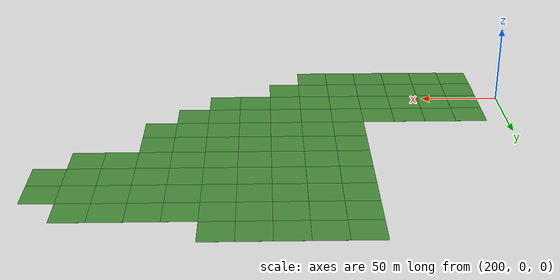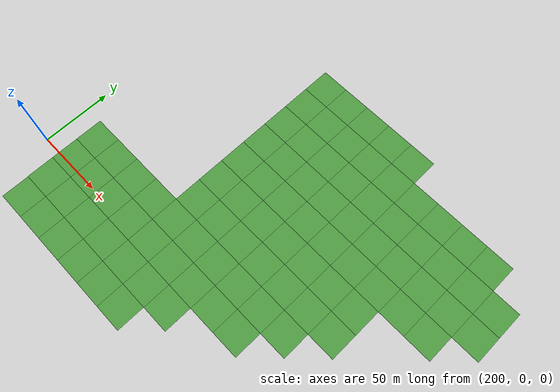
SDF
<sdf version="1.6">
 <world name="default">
  <model name="grass_plane_2">
   <static>1</static>
   <link name="link">
    <collision name="collision">
     <geometry><plane><normal>0 0 1</normal><size>500 500</size></plane></geometry>
     <surface><friction><ode><mu>0.5</mu><mu2>0.5</mu2></ode></friction></surface>
    </collision>
    <visual name="visual_0">
     <pose>-40 -40 0 0 -0 0</pose>
     <cast_shadows>0</cast_shadows>
     <geometry><plane><normal>0 0 1</normal><size>20 20</size></plane></geometry>
     <material>
      <script>
       <uri>model://grass_plane/materials/scripts</uri>
       <uri>model://grass_plane/materials/textures</uri>
       <name>vrc/grass</name>
      </script>
     </material>
    </visual>
    <visual name="visual_1">
     <pose>-20 -40 0 0 -0 0</pose>
     <cast_shadows>0</cast_shadows>
     <geometry><plane><normal>0 0 1</normal><size>20 20</size></plane></geometry>
     <material>
      <script>
       <uri>model://grass_plane/materials/scripts</uri>
       <uri>model://grass_plane/materials/textures</uri>
       <name>vrc/grass</name>
      </script>
     </material>
    </visual>
    <visual name="visual_2">
     <pose>0 -40 0 0 -0 0</pose>
     <cast_shadows>0</cast_shadows>
     <geometry><plane><normal>0 0 1</normal><size>20 20</size></plane></geometry>
     <material>
      <script>
       <uri>model://grass_plane/materials/scripts</uri>
       <uri>model://grass_plane/materials/textures</uri>
       <name>vrc/grass</name>
      </script>
     </material>
    </visual>
    <visual name="visual_3">
     <pose>20 -40 0 0 -0 0</pose>
     <cast_shadows>0</cast_shadows>
     <geometry><plane><normal>0 0 1</normal><size>20 20</size></plane></geometry>
     <material>
      <script>
       <uri>model://grass_plane/materials/scripts</uri>
       <uri>model://grass_plane/materials/textures</uri>
       <name>vrc/grass</name>
      </script>
     </material>
    </visual>
    <visual name="visual_4">
     <pose>40 -40 0 0 -0 0</pose>
     <cast_shadows>0</cast_shadows>
     <geometry><plane><normal>0 0 1</normal><size>20 20</size></plane></geometry>
     <material>
      <script>
       <uri>model://grass_plane/materials/scripts</uri>
       <uri>model://grass_plane/materials/textures</uri>
       <name>vrc/grass</name>
      </script>
     </material>
    </visual>
    <visual name="visual_5">
     <pose>60 -40 0 0 -0 0</pose>
     <cast_shadows>0</cast_shadows>
     <geometry><plane><normal>0 0 1</normal><size>20 20</size></plane></geometry>
     <material>
      <script>
       <uri>model://grass_plane/materials/scripts</uri>
       <uri>model://grass_plane/materials/textures</uri>
       <name>vrc/grass</name>
      </script>
     </material>
    </visual>
    <visual name="visual_6">
     <pose>-40 -20 0 0 -0 0</pose>
     <cast_shadows>0</cast_shadows>
     <geometry><plane><normal>0 0 1</normal><size>20 20</size></plane></geometry>
     <material>
      <script>
       <uri>model://grass_plane/materials/scripts</uri>
       <uri>model://grass_plane/materials/textures</uri>
       <name>vrc/grass</name>
      </script>
     </material>
    </visual>
    <visual name="visual_7">
     <pose>-20 -20 0 0 -0 0</pose>
     <cast_shadows>0</cast_shadows>
     <geometry><plane><normal>0 0 1</normal><size>20 20</size></plane></geometry>
     <material>
      <script>
       <uri>model://grass_plane/materials/scripts</uri>
       <uri>model://grass_plane/materials/textures</uri>
       <name>vrc/grass</name>
      </script>
     </material>
    </visual>
    <visual name="visual_8">
     <pose>0 -20 0 0 -0 0</pose>
     <cast_shadows>0</cast_shadows>
     <geometry><plane><normal>0 0 1</normal><size>20 20</size></plane></geometry>
     <material>
      <script>
       <uri>model://grass_plane/materials/scripts</uri>
       <uri>model://grass_plane/materials/textures</uri>
       <name>vrc/grass</name>
      </script>
     </material>
    </visual>
    <visual name="visual_9">
     <pose>20 -20 0 0 -0 0</pose>
     <cast_shadows>0</cast_shadows>
     <geometry><plane><normal>0 0 1</normal><size>20 20</size></plane></geometry>
     <material>
      <script>
       <uri>model://grass_plane/materials/scripts</uri>
       <uri>model://grass_plane/materials/textures</uri>
       <name>vrc/grass</name>
      </script>
     </material>
    </visual>
    <visual name="visual_10">
     <pose>40 -20 0 0 -0 0</pose>
     <cast_shadows>0</cast_shadows>
     <geometry><plane><normal>0 0 1</normal><size>20 20</size></plane></geometry>
     <material>
      <script>
       <uri>model://grass_plane/materials/scripts</uri>
       <uri>model://grass_plane/materials/textures</uri>
       <name>vrc/grass</name>
      </script>
     </material>
    </visual>
    <visual name="visual_11">
     <pose>60 -20 0 0 -0 0</pose>
     <cast_shadows>0</cast_shadows>
     <geometry><plane><normal>0 0 1</normal><size>20 20</size></plane></geometry>
     <material>
      <script>
       <uri>model://grass_plane/materials/scripts</uri>
       <uri>model://grass_plane/materials/textures</uri>
       <name>vrc/grass</name>
      </script>
     </material>
    </visual>
    <visual name="visual_12">
     <pose>80 -20 0 0 -0 0</pose>
     <cast_shadows>0</cast_shadows>
     <geometry><plane><normal>0 0 1</normal><size>20 20</size></plane></geometry>
     <material>
      <script>
       <uri>model://grass_plane/materials/scripts</uri>
       <uri>model://grass_plane/materials/textures</uri>
       <name>vrc/grass</name>
      </script>
     </material>
    </visual>
    <visual name="visual_13">
     <pose>-40 0 0 0 -0 0</pose>
     <cast_shadows>0</cast_shadows>
     <geometry><plane><normal>0 0 1</normal><size>20 20</size></plane></geometry>
     <material>
      <script>
       <uri>model://grass_plane/materials/scripts</uri>
       <uri>model://grass_plane/materials/textures</uri>
       <name>vrc/grass</name>
      </script>
     </material>
    </visual>
    <visual name="visual_14">
     <pose>-20 0 0 0 -0 0</pose>
     <cast_shadows>0</cast_shadows>
     <geometry><plane><normal>0 0 1</normal><size>20 20</size></plane></geometry>
     <material>
      <script>
       <uri>model://grass_plane/materials/scripts</uri>
       <uri>model://grass_plane/materials/textures</uri>
       <name>vrc/grass</name>
      </script>
     </material>
    </visual>
    <visual name="visual_15">
     <cast_shadows>0</cast_shadows>
     <geometry><plane><normal>0 0 1</normal><size>20 20</size></plane></geometry>
     <material>
      <script>
       <uri>model://grass_plane/materials/scripts</uri>
       <uri>model://grass_plane/materials/textures</uri>
       <name>vrc/grass</name>
      </script>
     </material>
    </visual>
    <visual name="visual_16">
     <pose>20 0 0 0 -0 0</pose>
     <cast_shadows>0</cast_shadows>
     <geometry><plane><normal>0 0 1</normal><size>20 20</size></plane></geometry>
     <material>
      <script>
       <uri>model://grass_plane/materials/scripts</uri>
       <uri>model://grass_plane/materials/textures</uri>
       <name>vrc/grass</name>
      </script>
     </material>
    </visual>
    <visual name="visual_17">
     <pose>40 0 0 0 -0 0</pose>
     <cast_shadows>0</cast_shadows>
     <geometry><plane><normal>0 0 1</normal><size>20 20</size></plane></geometry>
     <material>
      <script>
       <uri>model://grass_plane/materials/scripts</uri>
       <uri>model://grass_plane/materials/textures</uri>
       <name>vrc/grass</name>
      </script>
     </material>
    </visual>
    <visual name="visual_18">
     <pose>60 0 0 0 -0 0</pose>
     <cast_shadows>0</cast_shadows>
     <geometry><plane><normal>0 0 1</normal><size>20 20</size></plane></geometry>
     <material>
      <script>
       <uri>model://grass_plane/materials/scripts</uri>
       <uri>model://grass_plane/materials/textures</uri>
       <name>vrc/grass</name>
      </script>
     </material>
    </visual>
    <visual name="visual_19">
     <pose>80 0 0 0 -0 0</pose>
     <cast_shadows>0</cast_shadows>
     <geometry><plane><normal>0 0 1</normal><size>20 20</size></plane></geometry>
     <material>
      <script>
       <uri>model://grass_plane/materials/scripts</uri>
       <uri>model://grass_plane/materials/textures</uri>
       <name>vrc/grass</name>
      </script>
     </material>
    </visual>
    <visual name="visual_20">
     <pose>100 0 0 0 -0 0</pose>
     <cast_shadows>0</cast_shadows>
     <geometry><plane><normal>0 0 1</normal><size>20 20</size></plane></geometry>
     <material>
      <script>
       <uri>model://grass_plane/materials/scripts</uri>
       <uri>model://grass_plane/materials/textures</uri>
       <name>vrc/grass</name>
      </script>
     </material>
    </visual>
    <visual name="visual_21">
     <pose>120 0 0 0 -0 0</pose>
     <cast_shadows>0</cast_shadows>
     <geometry><plane><normal>0 0 1</normal><size>20 20</size></plane></geometry>
     <material>
      <script>
       <uri>model://grass_plane/materials/scripts</uri>
       <uri>model://grass_plane/materials/textures</uri>
       <name>vrc/grass</name>
      </script>
     </material>
    </visual>
    <visual name="visual_22">
     <pose>-40 20 0 0 -0 0</pose>
     <cast_shadows>0</cast_shadows>
     <geometry><plane><normal>0 0 1</normal><size>20 20</size></plane></geometry>
     <material>
      <script>
       <uri>model://grass_plane/materials/scripts</uri>
       <uri>model://grass_plane/materials/textures</uri>
       <name>vrc/grass</name>
      </script>
     </material>
    </visual>
    <visual name="visual_23">
     <pose>-20 20 0 0 -0 0</pose>
     <cast_shadows>0</cast_shadows>
     <geometry><plane><normal>0 0 1</normal><size>20 20</size></plane></geometry>
     <material>
      <script>
       <uri>model://grass_plane/materials/scripts</uri>
       <uri>model://grass_plane/materials/textures</uri>
       <name>vrc/grass</name>
      </script>
     </material>
    </visual>
    <visual name="visual_24">
     <pose>0 20 0 0 -0 0</pose>
     <cast_shadows>0</cast_shadows>
     <geometry><plane><normal>0 0 1</normal><size>20 20</size></plane></geometry>
     <material>
      <script>
       <uri>model://grass_plane/materials/scripts</uri>
       <uri>model://grass_plane/materials/textures</uri>
       <name>vrc/grass</name>
      </script>
     </material>
    </visual>
    <visual name="visual_25">
     <pose>20 20 0 0 -0 0</pose>
     <cast_shadows>0</cast_shadows>
     <geometry><plane><normal>0 0 1</normal><size>20 20</size></plane></geometry>
     <material>
      <script>
       <uri>model://grass_plane/materials/scripts</uri>
       <uri>model://grass_plane/materials/textures</uri>
       <name>vrc/grass</name>
      </script>
     </material>
    </visual>
    <visual name="visual_26">
     <pose>40 20 0 0 -0 0</pose>
     <cast_shadows>0</cast_shadows>
     <geometry><plane><normal>0 0 1</normal><size>20 20</size></plane></geometry>
     <material>
      <script>
       <uri>model://grass_plane/materials/scripts</uri>
       <uri>model://grass_plane/materials/textures</uri>
       <name>vrc/grass</name>
      </script>
     </material>
    </visual>
    <visual name="visual_27">
     <pose>60 20 0 0 -0 0</pose>
     <cast_shadows>0</cast_shadows>
     <geometry><plane><normal>0 0 1</normal><size>20 20</size></plane></geometry>
     <material>
      <script>
       <uri>model://grass_plane/materials/scripts</uri>
       <uri>model://grass_plane/materials/textures</uri>
       <name>vrc/grass</name>
      </script>
     </material>
    </visual>
    <visual name="visual_28">
     <pose>80 20 0 0 -0 0</pose>
     <cast_shadows>0</cast_shadows>
     <geometry><plane><normal>0 0 1</normal><size>20 20</size></plane></geometry>
     <material>
      <script>
       <uri>model://grass_plane/materials/scripts</uri>
       <uri>model://grass_plane/materials/textures</uri>
       <name>vrc/grass</name>
      </script>
     </material>
    </visual>
    <visual name="visual_29">
     <pose>100 20 0 0 -0 0</pose>
     <cast_shadows>0</cast_shadows>
     <geometry><plane><normal>0 0 1</normal><size>20 20</size></plane></geometry>
     <material>
      <script>
       <uri>model://grass_plane/materials/scripts</uri>
       <uri>model://grass_plane/materials/textures</uri>
       <name>vrc/grass</name>
      </script>
     </material>
    </visual>
    <visual name="visual_30">
     <pose>120 20 0 0 -0 0</pose>
     <cast_shadows>0</cast_shadows>
     <geometry><plane><normal>0 0 1</normal><size>20 20</size></plane></geometry>
     <material>
      <script>
       <uri>model://grass_plane/materials/scripts</uri>
       <uri>model://grass_plane/materials/textures</uri>
       <name>vrc/grass</name>
      </script>
     </material>
    </visual>
    <visual name="visual_31">
     <pose>140 20 0 0 -0 0</pose>
     <cast_shadows>0</cast_shadows>
     <geometry><plane><normal>0 0 1</normal><size>20 20</size></plane></geometry>
     <material>
      <script>
       <uri>model://grass_plane/materials/scripts</uri>
       <uri>model://grass_plane/materials/textures</uri>
       <name>vrc/grass</name>
      </script>
     </material>
    </visual>
    <visual name="visual_32">
     <pose>40 40 0 0 -0 0</pose>
     <cast_shadows>0</cast_shadows>
     <geometry><plane><normal>0 0 1</normal><size>20 20</size></plane></geometry>
     <material>
      <script>
       <uri>model://grass_plane/materials/scripts</uri>
       <uri>model://grass_plane/materials/textures</uri>
       <name>vrc/grass</name>
      </script>
     </material>
    </visual>
    <visual name="visual_33">
     <pose>60 40 0 0 -0 0</pose>
     <cast_shadows>0</cast_shadows>
     <geometry><plane><normal>0 0 1</normal><size>20 20</size></plane></geometry>
     <material>
      <script>
       <uri>model://grass_plane/materials/scripts</uri>
       <uri>model://grass_plane/materials/textures</uri>
       <name>vrc/grass</name>
      </script>
     </material>
    </visual>
    <visual name="visual_34">
     <pose>80 40 0 0 -0 0</pose>
     <cast_shadows>0</cast_shadows>
     <geometry><plane><normal>0 0 1</normal><size>20 20</size></plane></geometry>
     <material>
      <script>
       <uri>model://grass_plane/materials/scripts</uri>
       <uri>model://grass_plane/materials/textures</uri>
       <name>vrc/grass</name>
      </script>
     </material>
    </visual>
    <visual name="visual_35">
     <pose>100 40 0 0 -0 0</pose>
     <cast_shadows>0</cast_shadows>
     <geometry><plane><normal>0 0 1</normal><size>20 20</size></plane></geometry>
     <material>
      <script>
       <uri>model://grass_plane/materials/scripts</uri>
       <uri>model://grass_plane/materials/textures</uri>
       <name>vrc/grass</name>
      </script>
     </material>
    </visual>
    <visual name="visual_36">
     <pose>120 40 0 0 -0 0</pose>
     <cast_shadows>0</cast_shadows>
     <geometry><plane><normal>0 0 1</normal><size>20 20</size></plane></geometry>
     <material>
      <script>
       <uri>model://grass_plane/materials/scripts</uri>
       <uri>model://grass_plane/materials/textures</uri>
       <name>vrc/grass</name>
      </script>
     </material>
    </visual>
    <visual name="visual_37">
     <pose>140 40 0 0 -0 0</pose>
     <cast_shadows>0</cast_shadows>
     <geometry><plane><normal>0 0 1</normal><size>20 20</size></plane></geometry>
     <material>
      <script>
       <uri>model://grass_plane/materials/scripts</uri>
       <uri>model://grass_plane/materials/textures</uri>
       <name>vrc/grass</name>
      </script>
     </material>
    </visual>
    <visual name="visual_38">
     <pose>160 40 0 0 -0 0</pose>
     <cast_shadows>0</cast_shadows>
     <geometry><plane><normal>0 0 1</normal><size>20 20</size></plane></geometry>
     <material>
      <script>
       <uri>model://grass_plane/materials/scripts</uri>
       <uri>model://grass_plane/materials/textures</uri>
       <name>vrc/grass</name>
      </script>
     </material>
    </visual>
    <visual name="visual_39">
     <pose>40 60 0 0 -0 0</pose>
     <cast_shadows>0</cast_shadows>
     <geometry><plane><normal>0 0 1</normal><size>20 20</size></plane></geometry>
     <material>
      <script>
       <uri>model://grass_plane/materials/scripts</uri>
       <uri>model://grass_plane/materials/textures</uri>
       <name>vrc/grass</name>
      </script>
     </material>
    </visual>
    <visual name="visual_40">
     <pose>60 60 0 0 -0 0</pose>
     <cast_shadows>0</cast_shadows>
     <geometry><plane><normal>0 0 1</normal><size>20 20</size></plane></geometry>
     <material>
      <script>
       <uri>model://grass_plane/materials/scripts</uri>
       <uri>model://grass_plane/materials/textures</uri>
       <name>vrc/grass</name>
      </script>
     </material>
    </visual>
    <visual name="visual_41">
     <pose>80 60 0 0 -0 0</pose>
     <cast_shadows>0</cast_shadows>
     <geometry><plane><normal>0 0 1</normal><size>20 20</size></plane></geometry>
     <material>
      <script>
       <uri>model://grass_plane/materials/scripts</uri>
       <uri>model://grass_plane/materials/textures</uri>
       <name>vrc/grass</name>
      </script>
     </material>
    </visual>
    <visual name="visual_42">
     <pose>100 60 0 0 -0 0</pose>
     <cast_shadows>0</cast_shadows>
     <geometry><plane><normal>0 0 1</normal><size>20 20</size></plane></geometry>
     <material>
      <script>
       <uri>model://grass_plane/materials/scripts</uri>
       <uri>model://grass_plane/materials/textures</uri>
       <name>vrc/grass</name>
      </script>
     </material>
    </visual>
    <visual name="visual_43">
     <pose>120 60 0 0 -0 0</pose>
     <cast_shadows>0</cast_shadows>
     <geometry><plane><normal>0 0 1</normal><size>20 20</size></plane></geometry>
     <material>
      <script>
       <uri>model://grass_plane/materials/scripts</uri>
       <uri>model://grass_plane/materials/textures</uri>
       <name>vrc/grass</name>
      </script>
     </material>
    </visual>
    <visual name="visual_44">
     <pose>140 60 0 0 -0 0</pose>
     <cast_shadows>0</cast_shadows>
     <geometry><plane><normal>0 0 1</normal><size>20 20</size></plane></geometry>
     <material>
      <script>
       <uri>model://grass_plane/materials/scripts</uri>
       <uri>model://grass_plane/materials/textures</uri>
       <name>vrc/grass</name>
      </script>
     </material>
    </visual>
    <visual name="visual_45">
     <pose>160 60 0 0 -0 0</pose>
     <cast_shadows>0</cast_shadows>
     <geometry><plane><normal>0 0 1</normal><size>20 20</size></plane></geometry>
     <material>
      <script>
       <uri>model://grass_plane/materials/scripts</uri>
       <uri>model://grass_plane/materials/textures</uri>
       <name>vrc/grass</name>
      </script>
     </material>
    </visual>
    <visual name="visual_46">
     <pose>40 80 0 0 -0 0</pose>
     <cast_shadows>0</cast_shadows>
     <geometry><plane><normal>0 0 1</normal><size>20 20</size></plane></geometry>
     <material>
      <script>
       <uri>model://grass_plane/materials/scripts</uri>
       <uri>model://grass_plane/materials/textures</uri>
       <name>vrc/grass</name>
      </script>
     </material>
    </visual>
    <visual name="visual_47">
     <pose>60 80 0 0 -0 0</pose>
     <cast_shadows>0</cast_shadows>
     <geometry><plane><normal>0 0 1</normal><size>20 20</size></plane></geometry>
     <material>
      <script>
       <uri>model://grass_plane/materials/scripts</uri>
       <uri>model://grass_plane/materials/textures</uri>
       <name>vrc/grass</name>
      </script>
     </material>
    </visual>
    <visual name="visual_48">
     <pose>80 80 0 0 -0 0</pose>
     <cast_shadows>0</cast_shadows>
     <geometry><plane><normal>0 0 1</normal><size>20 20</size></plane></geometry>
     <material>
      <script>
       <uri>model://grass_plane/materials/scripts</uri>
       <uri>model://grass_plane/materials/textures</uri>
       <name>vrc/grass</name>
      </script>
     </material>
    </visual>
    <visual name="visual_49">
     <pose>100 80 0 0 -0 0</pose>
     <cast_shadows>0</cast_shadows>
     <geometry><plane><normal>0 0 1</normal><size>20 20</size></plane></geometry>
     <material>
      <script>
       <uri>model://grass_plane/materials/scripts</uri>
       <uri>model://grass_plane/materials/textures</uri>
       <name>vrc/grass</name>
      </script>
     </material>
    </visual>
    <visual name="visual_50">
     <pose>120 80 0 0 -0 0</pose>
     <cast_shadows>0</cast_shadows>
     <geometry><plane><normal>0 0 1</normal><size>20 20</size></plane></geometry>
     <material>
      <script>
       <uri>model://grass_plane/materials/scripts</uri>
       <uri>model://grass_plane/materials/textures</uri>
       <name>vrc/grass</name>
      </script>
     </material>
    </visual>
    <visual name="visual_51">
     <pose>140 80 0 0 -0 0</pose>
     <cast_shadows>0</cast_shadows>
     <geometry><plane><normal>0 0 1</normal><size>20 20</size></plane></geometry>
     <material>
      <script>
       <uri>model://grass_plane/materials/scripts</uri>
       <uri>model://grass_plane/materials/textures</uri>
       <name>vrc/grass</name>
      </script>
     </material>
    </visual>
    <visual name="visual_52">
     <pose>160 80 0 0 -0 0</pose>
     <cast_shadows>0</cast_shadows>
     <geometry><plane><normal>0 0 1</normal><size>20 20</size></plane></geometry>
     <material>
      <script>
       <uri>model://grass_plane/materials/scripts</uri>
       <uri>model://grass_plane/materials/textures</uri>
       <name>vrc/grass</name>
      </script>
     </material>
    </visual>
    <visual name="visual_53">
     <pose>180 80 0 0 -0 0</pose>
     <cast_shadows>0</cast_shadows>
     <geometry><plane><normal>0 0 1</normal><size>20 20</size></plane></geometry>
     <material>
      <script>
       <uri>model://grass_plane/materials/scripts</uri>
       <uri>model://grass_plane/materials/textures</uri>
       <name>vrc/grass</name>
      </script>
     </material>
    </visual>
    <visual name="visual_54">
     <pose>200 80 0 0 -0 0</pose>
     <cast_shadows>0</cast_shadows>
     <geometry><plane><normal>0 0 1</normal><size>20 20</size></plane></geometry>
     <material>
      <script>
       <uri>model://grass_plane/materials/scripts</uri>
       <uri>model://grass_plane/materials/textures</uri>
       <name>vrc/grass</name>
      </script>
     </material>
    </visual>
    <visual name="visual_55">
     <pose>40 100 0 0 -0 0</pose>
     <cast_shadows>0</cast_shadows>
     <geometry><plane><normal>0 0 1</normal><size>20 20</size></plane></geometry>
     <material>
      <script>
       <uri>model://grass_plane/materials/scripts</uri>
       <uri>model://grass_plane/materials/textures</uri>
       <name>vrc/grass</name>
      </script>
     </material>
    </visual>
    <visual name="visual_56">
     <pose>60 100 0 0 -0 0</pose>
     <cast_shadows>0</cast_shadows>
     <geometry><plane><normal>0 0 1</normal><size>20 20</size></plane></geometry>
     <material>
      <script>
       <uri>model://grass_plane/materials/scripts</uri>
       <uri>model://grass_plane/materials/textures</uri>
       <name>vrc/grass</name>
      </script>
     </material>
    </visual>
    <visual name="visual_57">
     <pose>80 100 0 0 -0 0</pose>
     <cast_shadows>0</cast_shadows>
     <geometry><plane><normal>0 0 1</normal><size>20 20</size></plane></geometry>
     <material>
      <script>
       <uri>model://grass_plane/materials/scripts</uri>
       <uri>model://grass_plane/materials/textures</uri>
       <name>vrc/grass</name>
      </script>
     </material>
    </visual>
    <visual name="visual_58">
     <pose>100 100 0 0 -0 0</pose>
     <cast_shadows>0</cast_shadows>
     <geometry><plane><normal>0 0 1</normal><size>20 20</size></plane></geometry>
     <material>
      <script>
       <uri>model://grass_plane/materials/scripts</uri>
       <uri>model://grass_plane/materials/textures</uri>
       <name>vrc/grass</name>
      </script>
     </material>
    </visual>
    <visual name="visual_59">
     <pose>120 100 0 0 -0 0</pose>
     <cast_shadows>0</cast_shadows>
     <geometry><plane><normal>0 0 1</normal><size>20 20</size></plane></geometry>
     <material>
      <script>
       <uri>model://grass_plane/materials/scripts</uri>
       <uri>model://grass_plane/materials/textures</uri>
       <name>vrc/grass</name>
      </script>
     </material>
    </visual>
    <visual name="visual_60">
     <pose>140 100 0 0 -0 0</pose>
     <cast_shadows>0</cast_shadows>
     <geometry><plane><normal>0 0 1</normal><size>20 20</size></plane></geometry>
     <material>
      <script>
       <uri>model://grass_plane/materials/scripts</uri>
       <uri>model://grass_plane/materials/textures</uri>
       <name>vrc/grass</name>
      </script>
     </material>
    </visual>
    <visual name="visual_61">
     <pose>160 100 0 0 -0 0</pose>
     <cast_shadows>0</cast_shadows>
     <geometry><plane><normal>0 0 1</normal><size>20 20</size></plane></geometry>
     <material>
      <script>
       <uri>model://grass_plane/materials/scripts</uri>
       <uri>model://grass_plane/materials/textures</uri>
       <name>vrc/grass</name>
      </script>
     </material>
    </visual>
    <visual name="visual_62">
     <pose>180 100 0 0 -0 0</pose>
     <cast_shadows>0</cast_shadows>
     <geometry><plane><normal>0 0 1</normal><size>20 20</size></plane></geometry>
     <material>
      <script>
       <uri>model://grass_plane/materials/scripts</uri>
       <uri>model://grass_plane/materials/textures</uri>
       <name>vrc/grass</name>
      </script>
     </material>
    </visual>
    <visual name="visual_63">
     <pose>200 100 0 0 -0 0</pose>
     <cast_shadows>0</cast_shadows>
     <geometry><plane><normal>0 0 1</normal><size>20 20</size></plane></geometry>
     <material>
      <script>
       <uri>model://grass_plane/materials/scripts</uri>
       <uri>model://grass_plane/materials/textures</uri>
       <name>vrc/grass</name>
      </script>
     </material>
    </visual>
    <visual name="visual_63a">
     <pose>220 100 0 0 -0 0</pose>
     <cast_shadows>0</cast_shadows>
     <geometry><plane><normal>0 0 1</normal><size>20 20</size></plane></geometry>
     <material>
      <script>
       <uri>model://grass_plane/materials/scripts</uri>
       <uri>model://grass_plane/materials/textures</uri>
       <name>vrc/grass</name>
      </script>
     </material>
    </visual>
    <visual name="visual_64">
     <pose>40 120 0 0 -0 0</pose>
     <cast_shadows>0</cast_shadows>
     <geometry><plane><normal>0 0 1</normal><size>20 20</size></plane></geometry>
     <material>
      <script>
       <uri>model://grass_plane/materials/scripts</uri>
       <uri>model://grass_plane/materials/textures</uri>
       <name>vrc/grass</name>
      </script>
     </material>
    </visual>
    <visual name="visual_65">
     <pose>60 120 0 0 -0 0</pose>
     <cast_shadows>0</cast_shadows>
     <geometry><plane><normal>0 0 1</normal><size>20 20</size></plane></geometry>
     <material>
      <script>
       <uri>model://grass_plane/materials/scripts</uri>
       <uri>model://grass_plane/materials/textures</uri>
       <name>vrc/grass</name>
      </script>
     </material>
    </visual>
    <visual name="visual_66">
     <pose>80 120 0 0 -0 0</pose>
     <cast_shadows>0</cast_shadows>
     <geometry><plane><normal>0 0 1</normal><size>20 20</size></plane></geometry>
     <material>
      <script>
       <uri>model://grass_plane/materials/scripts</uri>
       <uri>model://grass_plane/materials/textures</uri>
       <name>vrc/grass</name>
      </script>
     </material>
    </visual>
    <visual name="visual_67">
     <pose>100 120 0 0 -0 0</pose>
     <cast_shadows>0</cast_shadows>
     <geometry><plane><normal>0 0 1</normal><size>20 20</size></plane></geometry>
     <material>
      <script>
       <uri>model://grass_plane/materials/scripts</uri>
       <uri>model://grass_plane/materials/textures</uri>
       <name>vrc/grass</name>
      </script>
     </material>
    </visual>
    <visual name="visual_68">
     <pose>120 120 0 0 -0 0</pose>
     <cast_shadows>0</cast_shadows>
     <geometry><plane><normal>0 0 1</normal><size>20 20</size></plane></geometry>
     <material>
      <script>
       <uri>model://grass_plane/materials/scripts</uri>
       <uri>model://grass_plane/materials/textures</uri>
       <name>vrc/grass</name>
      </script>
     </material>
    </visual>
    <visual name="visual_69">
     <pose>140 120 0 0 -0 0</pose>
     <cast_shadows>0</cast_shadows>
     <geometry><plane><normal>0 0 1</normal><size>20 20</size></plane></geometry>
     <material>
      <script>
       <uri>model://grass_plane/materials/scripts</uri>
       <uri>model://grass_plane/materials/textures</uri>
       <name>vrc/grass</name>
      </script>
     </material>
    </visual>
    <visual name="visual_70">
     <pose>160 120 0 0 -0 0</pose>
     <cast_shadows>0</cast_shadows>
     <geometry><plane><normal>0 0 1</normal><size>20 20</size></plane></geometry>
     <material>
      <script>
       <uri>model://grass_plane/materials/scripts</uri>
       <uri>model://grass_plane/materials/textures</uri>
       <name>vrc/grass</name>
      </script>
     </material>
    </visual>
    <visual name="visual_71">
     <pose>180 120 0 0 -0 0</pose>
     <cast_shadows>0</cast_shadows>
     <geometry><plane><normal>0 0 1</normal><size>20 20</size></plane></geometry>
     <material>
      <script>
       <uri>model://grass_plane/materials/scripts</uri>
       <uri>model://grass_plane/materials/textures</uri>
       <name>vrc/grass</name>
      </script>
     </material>
    </visual>
    <visual name="visual_72">
     <pose>200 120 0 0 -0 0</pose>
     <cast_shadows>0</cast_shadows>
     <geometry><plane><normal>0 0 1</normal><size>20 20</size></plane></geometry>
     <material>
      <script>
       <uri>model://grass_plane/materials/scripts</uri>
       <uri>model://grass_plane/materials/textures</uri>
       <name>vrc/grass</name>
      </script>
     </material>
    </visual>
    <visual name="visual_72a">
     <pose>220 120 0 0 -0 0</pose>
     <cast_shadows>0</cast_shadows>
     <geometry><plane><normal>0 0 1</normal><size>20 20</size></plane></geometry>
     <material>
      <script>
       <uri>model://grass_plane/materials/scripts</uri>
       <uri>model://grass_plane/materials/textures</uri>
       <name>vrc/grass</name>
      </script>
     </material>
    </visual>
    <visual name="visual_73">
     <pose>40 140 0 0 -0 0</pose>
     <cast_shadows>0</cast_shadows>
     <geometry><plane><normal>0 0 1</normal><size>20 20</size></plane></geometry>
     <material>
      <script>
       <uri>model://grass_plane/materials/scripts</uri>
       <uri>model://grass_plane/materials/textures</uri>
       <name>vrc/grass</name>
      </script>
     </material>
    </visual>
    <visual name="visual_74">
     <pose>60 140 0 0 -0 0</pose>
     <cast_shadows>0</cast_shadows>
     <geometry><plane><normal>0 0 1</normal><size>20 20</size></plane></geometry>
     <material>
      <script>
       <uri>model://grass_plane/materials/scripts</uri>
       <uri>model://grass_plane/materials/textures</uri>
       <name>vrc/grass</name>
      </script>
     </material>
    </visual>
    <visual name="visual_75">
     <pose>80 140 0 0 -0 0</pose>
     <cast_shadows>0</cast_shadows>
     <geometry><plane><normal>0 0 1</normal><size>20 20</size></plane></geometry>
     <material>
      <script>
       <uri>model://grass_plane/materials/scripts</uri>
       <uri>model://grass_plane/materials/textures</uri>
       <name>vrc/grass</name>
      </script>
     </material>
    </visual>
    <visual name="visual_76">
     <pose>100 140 0 0 -0 0</pose>
     <cast_shadows>0</cast_shadows>
     <geometry><plane><normal>0 0 1</normal><size>20 20</size></plane></geometry>
     <material>
      <script>
       <uri>model://grass_plane/materials/scripts</uri>
       <uri>model://grass_plane/materials/textures</uri>
       <name>vrc/grass</name>
      </script>
     </material>
    </visual>
    <visual name="visual_77">
     <pose>120 140 0 0 -0 0</pose>
     <cast_shadows>0</cast_shadows>
     <geometry><plane><normal>0 0 1</normal><size>20 20</size></plane></geometry>
     <material>
      <script>
       <uri>model://grass_plane/materials/scripts</uri>
       <uri>model://grass_plane/materials/textures</uri>
       <name>vrc/grass</name>
      </script>
     </material>
    </visual>
    <visual name="visual_78">
     <pose>140 140 0 0 -0 0</pose>
     <cast_shadows>0</cast_shadows>
     <geometry><plane><normal>0 0 1</normal><size>20 20</size></plane></geometry>
     <material>
      <script>
       <uri>model://grass_plane/materials/scripts</uri>
       <uri>model://grass_plane/materials/textures</uri>
       <name>vrc/grass</name>
      </script>
     </material>
    </visual>
    <visual name="visual_79">
     <pose>160 140 0 0 -0 0</pose>
     <cast_shadows>0</cast_shadows>
     <geometry><plane><normal>0 0 1</normal><size>20 20</size></plane></geometry>
     <material>
      <script>
       <uri>model://grass_plane/materials/scripts</uri>
       <uri>model://grass_plane/materials/textures</uri>
       <name>vrc/grass</name>
      </script>
     </material>
    </visual>
    <visual name="visual_80">
     <pose>180 140 0 0 -0 0</pose>
     <cast_shadows>0</cast_shadows>
     <geometry><plane><normal>0 0 1</normal><size>20 20</size></plane></geometry>
     <material>
      <script>
       <uri>model://grass_plane/materials/scripts</uri>
       <uri>model://grass_plane/materials/textures</uri>
       <name>vrc/grass</name>
      </script>
     </material>
    </visual>
    <visual name="visual_81">
     <pose>200 140 0 0 -0 0</pose>
     <cast_shadows>0</cast_shadows>
     <geometry><plane><normal>0 0 1</normal><size>20 20</size></plane></geometry>
     <material>
      <script>
       <uri>model://grass_plane/materials/scripts</uri>
       <uri>model://grass_plane/materials/textures</uri>
       <name>vrc/grass</name>
      </script>
     </material>
    </visual>
    <visual name="visual_82">
     <pose>40 160 0 0 -0 0</pose>
     <cast_shadows>0</cast_shadows>
     <geometry><plane><normal>0 0 1</normal><size>20 20</size></plane></geometry>
     <material>
      <script>
       <uri>model://grass_plane/materials/scripts</uri>
       <uri>model://grass_plane/materials/textures</uri>
       <name>vrc/grass</name>
      </script>
     </material>
    </visual>
    <visual name="visual_83">
     <pose>60 160 0 0 -0 0</pose>
     <cast_shadows>0</cast_shadows>
     <geometry><plane><normal>0 0 1</normal><size>20 20</size></plane></geometry>
     <material>
      <script>
       <uri>model://grass_plane/materials/scripts</uri>
       <uri>model://grass_plane/materials/textures</uri>
       <name>vrc/grass</name>
      </script>
     </material>
    </visual>
    <visual name="visual_84">
     <pose>80 160 0 0 -0 0</pose>
     <cast_shadows>0</cast_shadows>
     <geometry><plane><normal>0 0 1</normal><size>20 20</size></plane></geometry>
     <material>
      <script>
       <uri>model://grass_plane/materials/scripts</uri>
       <uri>model://grass_plane/materials/textures</uri>
       <name>vrc/grass</name>
      </script>
     </material>
    </visual>
    <visual name="visual_85">
     <pose>100 160 0 0 -0 0</pose>
     <cast_shadows>0</cast_shadows>
     <geometry><plane><normal>0 0 1</normal><size>20 20</size></plane></geometry>
     <material>
      <script>
       <uri>model://grass_plane/materials/scripts</uri>
       <uri>model://grass_plane/materials/textures</uri>
       <name>vrc/grass</name>
      </script>
     </material>
    </visual>
    <visual name="visual_86">
     <pose>120 160 0 0 -0 0</pose>
     <cast_shadows>0</cast_shadows>
     <geometry><plane><normal>0 0 1</normal><size>20 20</size></plane></geometry>
     <material>
      <script>
       <uri>model://grass_plane/materials/scripts</uri>
       <uri>model://grass_plane/materials/textures</uri>
       <name>vrc/grass</name>
      </script>
     </material>
    </visual>
   </link>
   <pose>263.255 4.56789 0 0 -0 0</pose>
  </model>
 </world>
</sdf>
